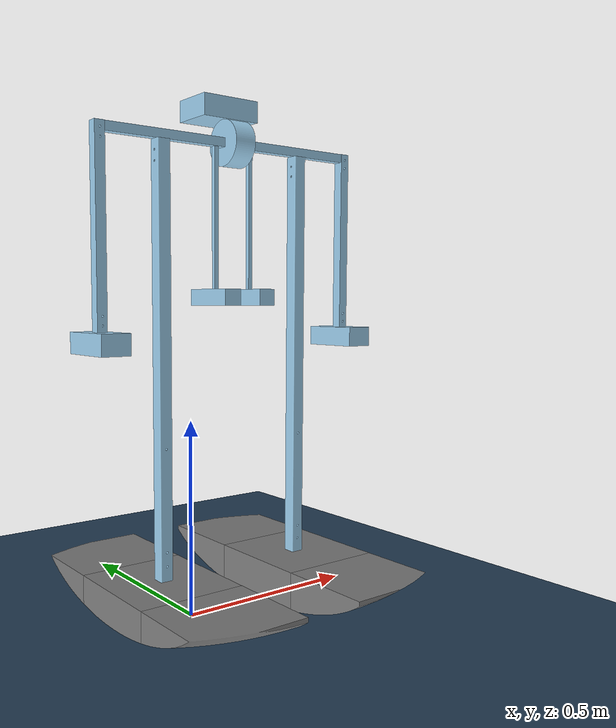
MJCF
<mujoco model="scene">
  <compiler angle="radian"/>

  <visual>
    <global azimuth="160" elevation="-20"/>
    <headlight ambient="0.3 0.3 0.3" diffuse="0.6 0.6 0.6" specular="0 0 0"/>
    <rgba haze="0.15 0.25 0.35 1"/>
  </visual>

  <default>
    <default class="bigfoot">
      <joint armature="0.0039" frictionloss="0.75"/>
      <general ctrllimited="true" ctrlrange="-25 25"/>
      <default class="visual">
        <geom type="mesh" contype="0" conaffinity="0" group="2"/>
      </default>
      <default class="collision">
        <geom group="3"/>
      </default>
    </default>
  </default>

  <asset>
    <texture type="skybox" builtin="gradient" rgb1="0.3 0.5 0.7" rgb2="0 0 0" width="512" height="3072"/>
    <texture type="2d" name="groundplane" builtin="checker" mark="edge" rgb1="0.2 0.3 0.4" rgb2="0.1 0.2 0.3" markrgb="0.8 0.8 0.8" width="300" height="300"/>
    <material name="simplified_motor___arm_rod_material" rgba="0.615686 0.811765 0.929412 1"/>
    <material name="footstl_scaled_v4_mirrored_material" rgba="0.627451 0.627451 0.627451 1"/>
    <material name="cf_rod___leg_material" rgba="0.615686 0.811765 0.929412 1"/>
    <material name="raspberry_pi___battery___motor_cover_material" rgba="0.615686 0.811765 0.929412 1"/>
    <material name="footstl_scaled_v4_mirrored__2_material" rgba="0.627451 0.627451 0.627451 1"/>
    <material name="footstl_scaled_v4_mirrored__3_material" rgba="0.627451 0.627451 0.627451 1"/>
    <material name="arm_rod_material" rgba="0.615686 0.811765 0.929412 1"/>
    <material name="exo_hip_rod_material" rgba="0.615686 0.811765 0.929412 1"/>
    <material name="hip_inner_right_material" rgba="0.615686 0.811765 0.929412 1"/>
    <material name="motor_material" rgba="0.615686 0.811765 0.929412 1"/>
    <material name="battery_material" rgba="0.615686 0.811765 0.929412 1"/>
    <material name="footstl_scaled_v4_material" rgba="0.627451 0.627451 0.627451 1"/>
    <material name="footstl_scaled_v4__2_material" rgba="0.627451 0.627451 0.627451 1"/>
    <material name="footstl_scaled_v4__3_material" rgba="0.627451 0.627451 0.627451 1"/>
    <material name="groundplane" texture="groundplane" texuniform="true" texrepeat="5 5" reflectance="0.2"/>
    <mesh name="simplified_motor___arm_rod" file="/home/rickycastr0/RML_Work/UpdateSim/LEGO-MuJoCo/bigfoot/assets/simplified_motor___arm_rod.stl"/>
    <mesh name="footstl_scaled_v4_mirrored__2" file="/home/rickycastr0/RML_Work/UpdateSim/LEGO-MuJoCo/bigfoot/assets/footstl_scaled_v4_mirrored__2.stl"/>
    <mesh name="footstl_scaled_v4_mirrored" file="/home/rickycastr0/RML_Work/UpdateSim/LEGO-MuJoCo/bigfoot/assets/footstl_scaled_v4_mirrored.stl"/>
    <mesh name="battery" file="/home/rickycastr0/RML_Work/UpdateSim/LEGO-MuJoCo/bigfoot/assets/battery.stl"/>
    <mesh name="footstl_scaled_v4__2" file="/home/rickycastr0/RML_Work/UpdateSim/LEGO-MuJoCo/bigfoot/assets/footstl_scaled_v4__2.stl"/>
    <mesh name="motor" file="/home/rickycastr0/RML_Work/UpdateSim/LEGO-MuJoCo/bigfoot/assets/motor.stl"/>
    <mesh name="exo_hip_rod" file="/home/rickycastr0/RML_Work/UpdateSim/LEGO-MuJoCo/bigfoot/assets/exo_hip_rod.stl"/>
    <mesh name="footstl_scaled_v4__3" file="/home/rickycastr0/RML_Work/UpdateSim/LEGO-MuJoCo/bigfoot/assets/footstl_scaled_v4__3.stl"/>
    <mesh name="footstl_scaled_v4" file="/home/rickycastr0/RML_Work/UpdateSim/LEGO-MuJoCo/bigfoot/assets/footstl_scaled_v4.stl"/>
    <mesh name="arm_rod" file="/home/rickycastr0/RML_Work/UpdateSim/LEGO-MuJoCo/bigfoot/assets/arm_rod.stl"/>
    <mesh name="hip_inner_right" file="/home/rickycastr0/RML_Work/UpdateSim/LEGO-MuJoCo/bigfoot/assets/hip_inner_right.stl"/>
    <mesh name="cf_rod___leg" file="/home/rickycastr0/RML_Work/UpdateSim/LEGO-MuJoCo/bigfoot/assets/cf_rod___leg.stl"/>
    <mesh name="raspberry_pi___battery___motor_cover" file="/home/rickycastr0/RML_Work/UpdateSim/LEGO-MuJoCo/bigfoot/assets/raspberry_pi___battery___motor_cover.stl"/>
    <mesh name="footstl_scaled_v4_mirrored__3" file="/home/rickycastr0/RML_Work/UpdateSim/LEGO-MuJoCo/bigfoot/assets/footstl_scaled_v4_mirrored__3.stl"/>
    <mesh name="right_front_mesh" file="/home/rickycastr0/RML_Work/UpdateSim/LEGO-MuJoCo/foot_section_out_y10pct/right_foot_front.obj"/>
    <mesh name="right_back_mesh" file="/home/rickycastr0/RML_Work/UpdateSim/LEGO-MuJoCo/foot_section_out_y10pct/right_foot_back.obj"/>
    <mesh name="right_middle_mesh" file="/home/rickycastr0/RML_Work/UpdateSim/LEGO-MuJoCo/foot_section_out_y10pct/right_foot_middle.obj"/>
    <mesh name="left_front_mesh" file="/home/rickycastr0/RML_Work/UpdateSim/LEGO-MuJoCo/foot_section_out_y10pct/left_foot_front.obj"/>
    <mesh name="left_back_mesh" file="/home/rickycastr0/RML_Work/UpdateSim/LEGO-MuJoCo/foot_section_out_y10pct/left_foot_back.obj"/>
    <mesh name="left_middle_mesh" file="/home/rickycastr0/RML_Work/UpdateSim/LEGO-MuJoCo/foot_section_out_y10pct/left_foot_middle.obj"/>
  </asset>

  <worldbody>
    <geom name="floor" size="0 0 0.05" type="plane" friction="2.7 0.6 0.2" material="groundplane"/>
    <light pos="0 0 3.5" dir="0 0 -1" directional="true"/>
    <body name="motor" childclass="bigfoot" pos="0 0 1.2">
      <inertial pos="-0.0575168 -0.241732 -0.430678" quat="0.701846 0.0348921 0.0655699 0.708446" mass="4.309" diaginertia="0.858782 0.750131 0.194052"/>
      <joint name="motor_freejoint" type="free" limited="false" actuatorfrclimited="false" armature="0" frictionloss="0"/>
      <geom class="visual" pos="-0.356716 -0.242053 -0.066037" quat="0.5 0.5 0.5 0.5" material="simplified_motor___arm_rod_material" mesh="simplified_motor___arm_rod"/>
      <geom class="collision" pos="-0.356716 -0.242053 -0.066037" quat="0.5 0.5 0.5 0.5" type="mesh" material="simplified_motor___arm_rod_material" mesh="simplified_motor___arm_rod"/>
      <geom class="visual" pos="-0.226779 -0.242053 -0.989937" quat="1 4.2617e-08 1.034e-09 4.972e-09" material="cf_rod___leg_material" mesh="cf_rod___leg"/>
      <geom class="collision" pos="-0.226779 -0.242053 -0.989937" quat="1 4.2617e-08 1.034e-09 4.972e-09" type="mesh" material="cf_rod___leg_material" mesh="cf_rod___leg"/>
      <geom class="visual" pos="-0.047396 -0.191253 0.033163" quat="4.2617e-08 -1 -4.972e-09 1.034e-09" material="raspberry_pi___battery___motor_cover_material" mesh="raspberry_pi___battery___motor_cover"/>
      <geom class="collision" pos="-0.047396 -0.191253 0.033163" quat="4.2617e-08 -1 -4.972e-09 1.034e-09" type="mesh" material="raspberry_pi___battery___motor_cover_material" mesh="raspberry_pi___battery___motor_cover"/>
      <geom class="visual" pos="0.273037 -0.242053 -0.056537" quat="4.972e-09 -1.034e-09 4.2617e-08 -1" material="arm_rod_material" mesh="arm_rod"/>
      <geom class="collision" pos="0.273037 -0.242053 -0.056537" quat="4.972e-09 -1.034e-09 4.2617e-08 -1" type="mesh" material="arm_rod_material" mesh="arm_rod"/>
      <geom class="visual" pos="-0.092396 -0.242053 -0.375337" quat="1 4.2617e-08 1.034e-09 4.972e-09" material="exo_hip_rod_material" mesh="exo_hip_rod"/>
      <geom class="collision" pos="-0.092396 -0.242053 -0.375337" quat="1 4.2617e-08 1.034e-09 4.972e-09" type="mesh" material="exo_hip_rod_material" mesh="exo_hip_rod"/>
      <geom class="visual" pos="-0.092396 -0.242053 -0.410337" quat="1 4.2617e-08 1.034e-09 4.972e-09" material="hip_inner_right_material" mesh="hip_inner_right"/>
      <geom class="collision" pos="-0.092396 -0.242053 -0.410337" quat="1 4.2617e-08 1.034e-09 4.972e-09" type="mesh" material="hip_inner_right_material" mesh="hip_inner_right"/>
      <geom class="visual" pos="-0.072396 -0.242053 -0.066037" quat="0.707107 2.662e-08 0.707107 3.3651e-08" material="motor_material" mesh="motor"/>
      <geom class="collision" pos="-0.072396 -0.242053 -0.066037" quat="0.707107 2.662e-08 0.707107 3.3651e-08" type="mesh" material="motor_material" mesh="motor"/>
      <geom class="visual" pos="0.273037 -0.242053 -0.506537" quat="1 4.2617e-08 1.034e-09 4.972e-09" material="battery_material" mesh="battery"/>
      <geom class="collision" pos="0.273037 -0.242053 -0.506537" quat="1 4.2617e-08 1.034e-09 4.972e-09" type="mesh" material="battery_material" mesh="battery"/>
      <geom name="right_foot_1" class="visual" pos="-0.113779 -0.242053 -0.989937" quat="0.707107 2.94036e-08 3.08659e-08 -0.707107" mesh="right_front_mesh"/>
      <geom name="right_foot_1_col" class="collision" pos="-0.113779 -0.242053 -0.989937" quat="0.707107 2.94036e-08 3.08659e-08 -0.707107" type="mesh" mesh="right_front_mesh"/>
      <geom name="right_foot_2" class="visual" pos="-0.113779 -0.242053 -0.989937" quat="0.707107 2.94036e-08 3.08659e-08 -0.707107" mesh="right_back_mesh"/>
      <geom name="right_foot_2_col" class="collision" pos="-0.113779 -0.242053 -0.989937" quat="0.707107 2.94036e-08 3.08659e-08 -0.707107" type="mesh" mesh="right_back_mesh"/>
      <geom name="right_foot_3" class="visual" pos="-0.113779 -0.242053 -0.989937" quat="0.707107 2.94036e-08 3.08659e-08 -0.707107" mesh="right_middle_mesh"/>
      <geom name="right_foot_3_col" class="collision" pos="-0.113779 -0.242053 -0.989937" quat="0.707107 2.94036e-08 3.08659e-08 -0.707107" type="mesh" mesh="right_middle_mesh"/>
      <body name="simplified_motor___arm_rod" pos="-0.022396 -0.242053 -0.066037" quat="1.1977e-08 0.707107 -4.946e-09 -0.707107">
        <inertial pos="0.534737 0.00883575 0.0105451" quat="0.417716 0.557624 0.565594 0.441216" mass="3.017" diaginertia="0.563183 0.462055 0.1832"/>
        <joint name="hip" pos="0 0 0" axis="0 0 1"/>
        <geom class="visual" pos="0.3443 0 -0.02" quat="0 0.707107 0 -0.707107" material="hip_inner_right_material" mesh="hip_inner_right"/>
        <geom class="collision" pos="0.3443 0 -0.02" quat="0 0.707107 0 -0.707107" type="mesh" material="hip_inner_right_material" mesh="hip_inner_right"/>
        <geom class="visual" pos="-0.0095 0 0.345432" quat="0 -0.707107 0 0.707107" material="arm_rod_material" mesh="arm_rod"/>
        <geom class="collision" pos="-0.0095 0 0.345432" quat="0 -0.707107 0 0.707107" type="mesh" material="arm_rod_material" mesh="arm_rod"/>
        <geom class="visual" pos="0.9239 0 -0.154383" quat="0 0.707107 0 -0.707107" material="cf_rod___leg_material" mesh="cf_rod___leg"/>
        <geom class="collision" pos="0.9239 0 -0.154383" quat="0 0.707107 0 -0.707107" type="mesh" material="cf_rod___leg_material" mesh="cf_rod___leg"/>
        <geom class="visual" pos="0 0 -0.28432" material="simplified_motor___arm_rod_material" mesh="simplified_motor___arm_rod"/>
        <geom class="collision" pos="0 0 -0.28432" type="mesh" material="simplified_motor___arm_rod_material" mesh="simplified_motor___arm_rod"/>
        <geom class="visual" pos="0.4405 0 0.345432" quat="0.707107 0 -0.707107 0" material="battery_material" mesh="battery"/>
        <geom class="collision" pos="0.4405 0 0.345432" quat="0.707107 0 -0.707107 0" type="mesh" material="battery_material" mesh="battery"/>
        <geom class="visual" pos="0.3093 0 -0.02" quat="0 0.707107 0 -0.707107" material="exo_hip_rod_material" mesh="exo_hip_rod"/>
        <geom class="collision" pos="0.3093 0 -0.02" quat="0 0.707107 0 -0.707107" type="mesh" material="exo_hip_rod_material" mesh="exo_hip_rod"/>
        <geom name="left_foot_1" class="visual" pos="0.9239 0 -0.041383" quat="0.5 -0.5 -0.5 0.5" mesh="left_front_mesh"/>
        <geom name="left_foot_1_col" class="collision" pos="0.9239 0 -0.041383" quat="0.5 -0.5 -0.5 0.5" type="mesh" mesh="left_front_mesh"/>
        <geom name="left_foot_2" class="visual" pos="0.9239 0 -0.041383" quat="0.5 -0.5 -0.5 0.5" mesh="left_back_mesh" friction="10 10 10"/>
        <geom name="left_foot_2_col" class="collision" pos="0.9239 0 -0.041383" quat="0.5 -0.5 -0.5 0.5" type="mesh" mesh="left_back_mesh"/>
        <geom name="left_foot_3" class="visual" pos="0.9239 0 -0.041383" quat="0.5 -0.5 -0.5 0.5" mesh="left_middle_mesh"/>
        <geom name="left_foot_3_col" class="collision" pos="0.9239 0 -0.041383" quat="0.5 -0.5 -0.5 0.5" type="mesh" mesh="left_middle_mesh"/>
      </body>
    </body>
  </worldbody>

  <actuator>
    <general name="hip" class="bigfoot" joint="hip"/>
  </actuator>
</mujoco>
